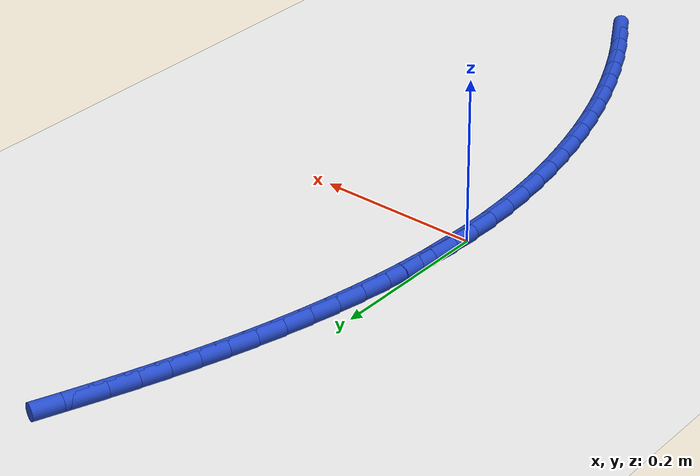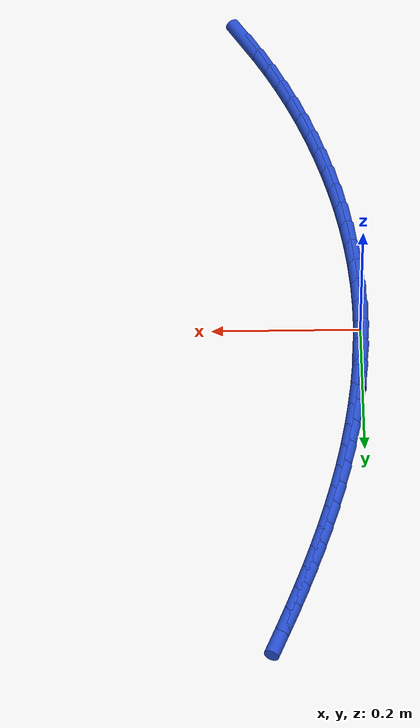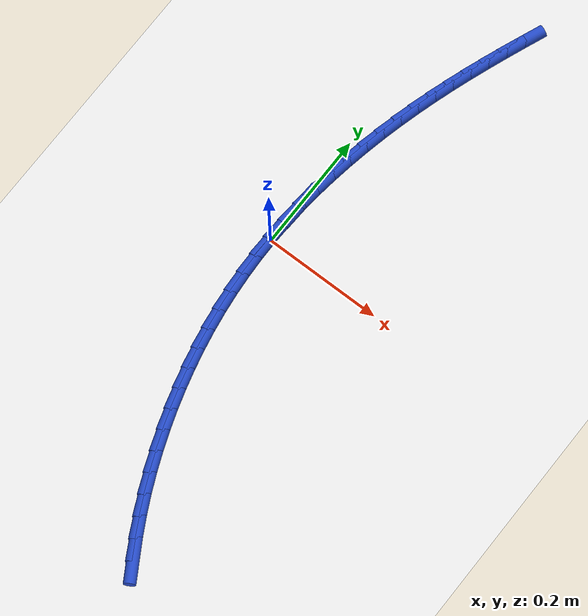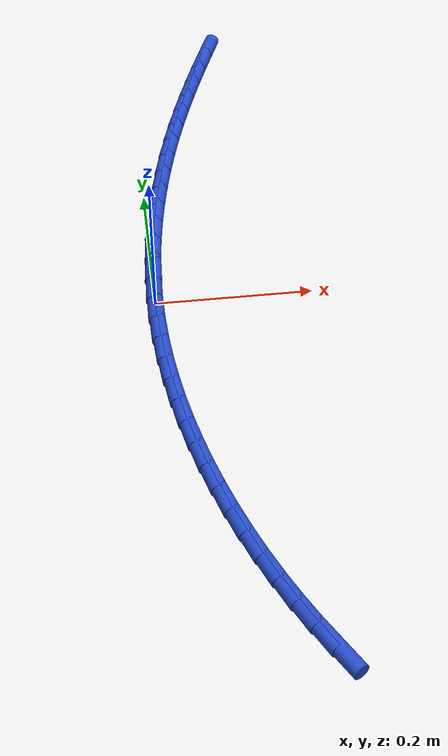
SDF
<sdf version="1.6">
 <world name="default">
  <model name="ground_plane">
   <static>1</static>
   <link name="link">
    <collision name="collision">
     <geometry><plane><normal>0 0 1</normal><size>100 100</size></plane></geometry>
     <surface><friction><ode><mu>100</mu><mu2>50</mu2></ode></friction></surface>
    </collision>
    <visual name="visual">
     <cast_shadows>0</cast_shadows>
     <geometry><plane><normal>0 0 1</normal><size>100 100</size></plane></geometry>
     <material>
      <script><uri>file://media/materials/scripts/gazebo.material</uri><name>Gazebo/WhiteGlow</name></script>
     </material>
    </visual>
   </link>
  </model>
  <model name="line">
   <link name="link_0">
    <pose>-3.469446951953614e-18 -9.020562075079397e-17 0.01 0 1.57 1.5426617681742363</pose>
    <collision name="collision">
     <geometry><cylinder><radius>0.01</radius><length>0.08</length></cylinder></geometry>
    </collision>
    <visual name="visual">
     <material>
      <script><name>Gazebo/Blue</name><uri>file://media/materials/scripts/gazebo.material</uri></script>
     </material>
     <geometry><cylinder><radius>0.01</radius><length>0.08</length></cylinder></geometry>
    </visual>
   </link>
   <link name="link_1">
    <pose>0.0009700444120622061 0.03446965222794556 0.01 0 1.57 1.5068231964550598</pose>
    <collision name="collision">
     <geometry><cylinder><radius>0.01</radius><length>0.08</length></cylinder></geometry>
    </collision>
    <visual name="visual">
     <material>
      <script><name>Gazebo/Blue</name><uri>file://media/materials/scripts/gazebo.material</uri></script>
     </material>
     <geometry><cylinder><radius>0.01</radius><length>0.08</length></cylinder></geometry>
    </visual>
   </link>
   <link name="link_2">
    <pose>0.0031786117746234596 0.06894590232403473 0.01 0 1.57 1.4730845369021786</pose>
    <collision name="collision">
     <geometry><cylinder><radius>0.01</radius><length>0.08</length></cylinder></geometry>
    </collision>
    <visual name="visual">
     <material>
      <script><name>Gazebo/Blue</name><uri>file://media/materials/scripts/gazebo.material</uri></script>
     </material>
     <geometry><cylinder><radius>0.01</radius><length>0.08</length></cylinder></geometry>
    </visual>
   </link>
   <link name="link_3">
    <pose>0.006551479913786688 0.1033545140771062 0.01 0 1.57 1.441283973052966</pose>
    <collision name="collision">
     <geometry><cylinder><radius>0.01</radius><length>0.08</length></cylinder></geometry>
    </collision>
    <visual name="visual">
     <material>
      <script><name>Gazebo/Blue</name><uri>file://media/materials/scripts/gazebo.material</uri></script>
     </material>
     <geometry><cylinder><radius>0.01</radius><length>0.08</length></cylinder></geometry>
    </visual>
   </link>
   <link name="link_4">
    <pose>0.011014426655654807 0.13762125127599864 0.01 0 1.57 1.4112620103847309</pose>
    <collision name="collision">
     <geometry><cylinder><radius>0.01</radius><length>0.08</length></cylinder></geometry>
    </collision>
    <visual name="visual">
     <material>
      <script><name>Gazebo/Blue</name><uri>file://media/materials/scripts/gazebo.material</uri></script>
     </material>
     <geometry><cylinder><radius>0.01</radius><length>0.08</length></cylinder></geometry>
    </visual>
   </link>
   <link name="link_5">
    <pose>0.016493229826330752 0.1716718777095508 0.01 0 1.57 1.3828633024975148</pose>
    <collision name="collision">
     <geometry><cylinder><radius>0.01</radius><length>0.08</length></cylinder></geometry>
    </collision>
    <visual name="visual">
     <material>
      <script><name>Gazebo/Blue</name><uri>file://media/materials/scripts/gazebo.material</uri></script>
     </material>
     <geometry><cylinder><radius>0.01</radius><length>0.08</length></cylinder></geometry>
    </visual>
   </link>
   <link name="link_6">
    <pose>0.022913667251917458 0.20543215716660157 0.01 0 1.57 1.3559376009215622</pose>
    <collision name="collision">
     <geometry><cylinder><radius>0.01</radius><length>0.08</length></cylinder></geometry>
    </collision>
    <visual name="visual">
     <material>
      <script><name>Gazebo/Blue</name><uri>file://media/materials/scripts/gazebo.material</uri></script>
     </material>
     <geometry><cylinder><radius>0.01</radius><length>0.08</length></cylinder></geometry>
    </visual>
   </link>
   <link name="link_7">
    <pose>0.03020151675851784 0.23882785343598956 0.01 0 1.57 1.3303400099889016</pose>
    <collision name="collision">
     <geometry><cylinder><radius>0.01</radius><length>0.08</length></cylinder></geometry>
    </collision>
    <visual name="visual">
     <material>
      <script><name>Gazebo/Blue</name><uri>file://media/materials/scripts/gazebo.material</uri></script>
     </material>
     <geometry><cylinder><radius>0.01</radius><length>0.08</length></cylinder></geometry>
    </visual>
   </link>
   <link name="link_8">
    <pose>0.03828255617223482 0.27178473030655337 0.01 0 1.57 1.3059326749395184</pose>
    <collision name="collision">
     <geometry><cylinder><radius>0.01</radius><length>0.08</length></cylinder></geometry>
    </collision>
    <visual name="visual">
     <material>
      <script><name>Gazebo/Blue</name><uri>file://media/materials/scripts/gazebo.material</uri></script>
     </material>
     <geometry><cylinder><radius>0.01</radius><length>0.08</length></cylinder></geometry>
    </visual>
   </link>
   <link name="link_9">
    <pose>0.047082728457098454 0.3042294160180554 0.01 0 1.57 1.2827956050872755</pose>
    <collision name="collision">
     <geometry><cylinder><radius>0.01</radius><length>0.08</length></cylinder></geometry>
    </collision>
    <visual name="visual">
     <material>
      <script><name>Gazebo/Blue</name><uri>file://media/materials/scripts/gazebo.material</uri></script>
     </material>
     <geometry><cylinder><radius>0.01</radius><length>0.08</length></cylinder></geometry>
    </visual>
   </link>
   <link name="link_10">
    <pose>0.056541421908028675 0.33615892136201503 0.01 0 1.57 1.2614004162500048</pose>
    <collision name="collision">
     <geometry><cylinder><radius>0.01</radius><length>0.08</length></cylinder></geometry>
    </collision>
    <visual name="visual">
     <material>
      <script><name>Gazebo/Blue</name><uri>file://media/materials/scripts/gazebo.material</uri></script>
     </material>
     <geometry><cylinder><radius>0.01</radius><length>0.08</length></cylinder></geometry>
    </visual>
   </link>
   <link name="link_11">
    <pose>0.06662120237509289 0.3676915851573642 0.01 0 1.57 1.2420481661888583</pose>
    <collision name="collision">
     <geometry><cylinder><radius>0.01</radius><length>0.08</length></cylinder></geometry>
    </collision>
    <visual name="visual">
     <material>
      <script><name>Gazebo/Blue</name><uri>file://media/materials/scripts/gazebo.material</uri></script>
     </material>
     <geometry><cylinder><radius>0.01</radius><length>0.08</length></cylinder></geometry>
    </visual>
   </link>
   <link name="link_12">
    <pose>0.0772869301197786 0.39895775682596096 0.01 0 1.57 1.224964220346381</pose>
    <collision name="collision">
     <geometry><cylinder><radius>0.01</radius><length>0.08</length></cylinder></geometry>
    </collision>
    <visual name="visual">
     <material>
      <script><name>Gazebo/Blue</name><uri>file://media/materials/scripts/gazebo.material</uri></script>
     </material>
     <geometry><cylinder><radius>0.01</radius><length>0.08</length></cylinder></geometry>
    </visual>
   </link>
   <link name="link_13">
    <pose>0.08850346540357334 0.4300877857896637 0.01 0 1.57 1.2103193462445507</pose>
    <collision name="collision">
     <geometry><cylinder><radius>0.01</radius><length>0.08</length></cylinder></geometry>
    </collision>
    <visual name="visual">
     <material>
      <script><name>Gazebo/Blue</name><uri>file://media/materials/scripts/gazebo.material</uri></script>
     </material>
     <geometry><cylinder><radius>0.01</radius><length>0.08</length></cylinder></geometry>
    </visual>
   </link>
   <link name="link_14">
    <pose>0.10023566848796471 0.46121202147033075 0.01 0 1.57 1.1982265323540588</pose>
    <collision name="collision">
     <geometry><cylinder><radius>0.01</radius><length>0.08</length></cylinder></geometry>
    </collision>
    <visual name="visual">
     <material>
      <script><name>Gazebo/Blue</name><uri>file://media/materials/scripts/gazebo.material</uri></script>
     </material>
     <geometry><cylinder><radius>0.01</radius><length>0.08</length></cylinder></geometry>
    </visual>
   </link>
   <link name="link_15">
    <pose>0.11244839963444016 0.49246081328982 0.01 0 1.57 1.188740996866804</pose>
    <collision name="collision">
     <geometry><cylinder><radius>0.01</radius><length>0.08</length></cylinder></geometry>
    </collision>
    <visual name="visual">
     <material>
      <script><name>Gazebo/Blue</name><uri>file://media/materials/scripts/gazebo.material</uri></script>
     </material>
     <geometry><cylinder><radius>0.01</radius><length>0.08</length></cylinder></geometry>
    </visual>
   </link>
   <link name="link_194">
    <pose>0.1475713330991277 -0.523462811115442 0.01 0 1.57 -1.0358269135217406</pose>
    <collision name="collision">
     <geometry><cylinder><radius>0.01</radius><length>0.08</length></cylinder></geometry>
    </collision>
    <visual name="visual">
     <material>
      <script><name>Gazebo/Blue</name><uri>file://media/materials/scripts/gazebo.material</uri></script>
     </material>
     <geometry><cylinder><radius>0.01</radius><length>0.08</length></cylinder></geometry>
    </visual>
   </link>
   <link name="link_195">
    <pose>0.1301988791713999 -0.49414775358685337 0.01 0 1.57 -1.0727256463416734</pose>
    <collision name="collision">
     <geometry><cylinder><radius>0.01</radius><length>0.08</length></cylinder></geometry>
    </collision>
    <visual name="visual">
     <material>
      <script><name>Gazebo/Blue</name><uri>file://media/materials/scripts/gazebo.material</uri></script>
     </material>
     <geometry><cylinder><radius>0.01</radius><length>0.08</length></cylinder></geometry>
    </visual>
   </link>
   <link name="link_196">
    <pose>0.11381841936246011 -0.4640255402376944 0.01 0 1.57 -1.1084732470013356</pose>
    <collision name="collision">
     <geometry><cylinder><radius>0.01</radius><length>0.08</length></cylinder></geometry>
    </collision>
    <visual name="visual">
     <material>
      <script><name>Gazebo/Blue</name><uri>file://media/materials/scripts/gazebo.material</uri></script>
     </material>
     <geometry><cylinder><radius>0.01</radius><length>0.08</length></cylinder></geometry>
    </visual>
   </link>
   <link name="link_197">
    <pose>0.09844964729608353 -0.43318594376524555 0.01 0 1.57 -1.143270701667583</pose>
    <collision name="collision">
     <geometry><cylinder><radius>0.01</radius><length>0.08</length></cylinder></geometry>
    </collision>
    <visual name="visual">
     <material>
      <script><name>Gazebo/Blue</name><uri>file://media/materials/scripts/gazebo.material</uri></script>
     </material>
     <geometry><cylinder><radius>0.01</radius><length>0.08</length></cylinder></geometry>
    </visual>
   </link>
   <link name="link_198">
    <pose>0.08411225659604414 -0.40171873686678533 0.01 0 1.57 -1.1773136301774634</pose>
    <collision name="collision">
     <geometry><cylinder><radius>0.01</radius><length>0.08</length></cylinder></geometry>
    </collision>
    <visual name="visual">
     <material>
      <script><name>Gazebo/Blue</name><uri>file://media/materials/scripts/gazebo.material</uri></script>
     </material>
     <geometry><cylinder><radius>0.01</radius><length>0.08</length></cylinder></geometry>
    </visual>
   </link>
   <link name="link_199">
    <pose>0.0708259408861164 -0.369713692239593 0.01 0 1.57 -1.21079351781102</pose>
    <collision name="collision">
     <geometry><cylinder><radius>0.01</radius><length>0.08</length></cylinder></geometry>
    </collision>
    <visual name="visual">
     <material>
      <script><name>Gazebo/Blue</name><uri>file://media/materials/scripts/gazebo.material</uri></script>
     </material>
     <geometry><cylinder><radius>0.01</radius><length>0.08</length></cylinder></geometry>
    </visual>
   </link>
   <link name="link_200">
    <pose>0.05861039379007468 -0.3372605825809478 0.01 0 1.57 -1.2438992658825274</pose>
    <collision name="collision">
     <geometry><cylinder><radius>0.01</radius><length>0.08</length></cylinder></geometry>
    </collision>
    <visual name="visual">
     <material>
      <script><name>Gazebo/Blue</name><uri>file://media/materials/scripts/gazebo.material</uri></script>
     </material>
     <geometry><cylinder><radius>0.01</radius><length>0.08</length></cylinder></geometry>
    </visual>
   </link>
   <link name="link_201">
    <pose>0.04748530893169344 -0.3044491805881291 0.01 0 1.57 -1.2768587816279016</pose>
    <collision name="collision">
     <geometry><cylinder><radius>0.01</radius><length>0.08</length></cylinder></geometry>
    </collision>
    <visual name="visual">
     <material>
      <script><name>Gazebo/Blue</name><uri>file://media/materials/scripts/gazebo.material</uri></script>
     </material>
     <geometry><cylinder><radius>0.01</radius><length>0.08</length></cylinder></geometry>
    </visual>
   </link>
   <link name="link_202">
    <pose>0.03747055084968632 -0.27136507642563024 0.01 0 1.57 -1.310214981454818</pose>
    <collision name="collision">
     <geometry><cylinder><radius>0.01</radius><length>0.08</length></cylinder></geometry>
    </collision>
    <visual name="visual">
     <material>
      <script><name>Gazebo/Blue</name><uri>file://media/materials/scripts/gazebo.material</uri></script>
     </material>
     <geometry><cylinder><radius>0.01</radius><length>0.08</length></cylinder></geometry>
    </visual>
   </link>
   <link name="link_203">
    <pose>0.028587710621609416 -0.23805160938548842 0.01 0 1.57 -1.3442234383055418</pose>
    <collision name="collision">
     <geometry><cylinder><radius>0.01</radius><length>0.08</length></cylinder></geometry>
    </collision>
    <visual name="visual">
     <material>
      <script><name>Gazebo/Blue</name><uri>file://media/materials/scripts/gazebo.material</uri></script>
     </material>
     <geometry><cylinder><radius>0.01</radius><length>0.08</length></cylinder></geometry>
    </visual>
   </link>
   <link name="link_204">
    <pose>0.02085938089252052 -0.20452760897184386 0.01 0 1.57 -1.3788819379830117</pose>
    <collision name="collision">
     <geometry><cylinder><radius>0.01</radius><length>0.08</length></cylinder></geometry>
    </collision>
    <visual name="visual">
     <material>
      <script><name>Gazebo/Blue</name><uri>file://media/materials/scripts/gazebo.material</uri></script>
     </material>
     <geometry><cylinder><radius>0.01</radius><length>0.08</length></cylinder></geometry>
    </visual>
   </link>
   <link name="link_205">
    <pose>0.014308166608906488 -0.170811603655296 0.01 0 1.57 -1.4141793901492117</pose>
    <collision name="collision">
     <geometry><cylinder><radius>0.01</radius><length>0.08</length></cylinder></geometry>
    </collision>
    <visual name="visual">
     <material>
      <script><name>Gazebo/Blue</name><uri>file://media/materials/scripts/gazebo.material</uri></script>
     </material>
     <geometry><cylinder><radius>0.01</radius><length>0.08</length></cylinder></geometry>
    </visual>
   </link>
   <link name="link_206">
    <pose>0.008956672717254206 -0.13692212190644473 0.01 0 1.57 -1.4500982330486631</pose>
    <collision name="collision">
     <geometry><cylinder><radius>0.01</radius><length>0.08</length></cylinder></geometry>
    </collision>
    <visual name="visual">
     <material>
      <script><name>Gazebo/Blue</name><uri>file://media/materials/scripts/gazebo.material</uri></script>
     </material>
     <geometry><cylinder><radius>0.01</radius><length>0.08</length></cylinder></geometry>
    </visual>
   </link>
   <link name="link_207">
    <pose>0.0048275041640505455 -0.10287769219588977 0.01 0 1.57 -1.4866140459977706</pose>
    <collision name="collision">
     <geometry><cylinder><radius>0.01</radius><length>0.08</length></cylinder></geometry>
    </collision>
    <visual name="visual">
     <material>
      <script><name>Gazebo/Blue</name><uri>file://media/materials/scripts/gazebo.material</uri></script>
     </material>
     <geometry><cylinder><radius>0.01</radius><length>0.08</length></cylinder></geometry>
    </visual>
   </link>
   <link name="link_208">
    <pose>0.0019432658957823736 -0.0686968429942308 0.01 0 1.57 -1.523695258595347</pose>
    <collision name="collision">
     <geometry><cylinder><radius>0.01</radius><length>0.08</length></cylinder></geometry>
    </collision>
    <visual name="visual">
     <material>
      <script><name>Gazebo/Blue</name><uri>file://media/materials/scripts/gazebo.material</uri></script>
     </material>
     <geometry><cylinder><radius>0.01</radius><length>0.08</length></cylinder></geometry>
    </visual>
   </link>
   <link name="link_209">
    <pose>0.0003265628589365372 -0.03439810277206681 0.01 0 1.57 -1.5613029820397548</pose>
    <collision name="collision">
     <geometry><cylinder><radius>0.01</radius><length>0.08</length></cylinder></geometry>
    </collision>
    <visual name="visual">
     <material>
      <script><name>Gazebo/Blue</name><uri>file://media/materials/scripts/gazebo.material</uri></script>
     </material>
     <geometry><cylinder><radius>0.01</radius><length>0.08</length></cylinder></geometry>
    </visual>
   </link>
   <link name="link_210">
    <pose>-1.3010426069826053e-17 7.632783294297951e-17 0.01 0 1.57 1.5422016671167103</pose>
    <collision name="collision">
     <geometry><cylinder><radius>0.01</radius><length>0.08</length></cylinder></geometry>
    </collision>
    <visual name="visual">
     <material>
      <script><name>Gazebo/Blue</name><uri>file://media/materials/scripts/gazebo.material</uri></script>
     </material>
     <geometry><cylinder><radius>0.01</radius><length>0.08</length></cylinder></geometry>
    </visual>
   </link>
   <link name="link_211">
    <pose>0.000986182265459521 0.03447893685137252 0.01 0 1.57 1.5036868086536892</pose>
    <collision name="collision">
     <geometry><cylinder><radius>0.01</radius><length>0.08</length></cylinder></geometry>
    </collision>
    <visual name="visual">
     <material>
      <script><name>Gazebo/Blue</name><uri>file://media/materials/scripts/gazebo.material</uri></script>
     </material>
     <geometry><cylinder><radius>0.01</radius><length>0.08</length></cylinder></geometry>
    </visual>
   </link>
   <link name="link_212">
    <pose>0.003307714601802174 0.06902017931145163 0.01 0 1.57 1.522909087950666</pose>
    <collision name="collision">
     <geometry><cylinder><radius>0.01</radius><length>0.08</length></cylinder></geometry>
    </collision>
    <visual name="visual">
     <material>
      <script><name>Gazebo/Blue</name><uri>file://media/materials/scripts/gazebo.material</uri></script>
     </material>
     <geometry><cylinder><radius>0.01</radius><length>0.08</length></cylinder></geometry>
    </visual>
   </link>
  </model>
 </world>
</sdf>
